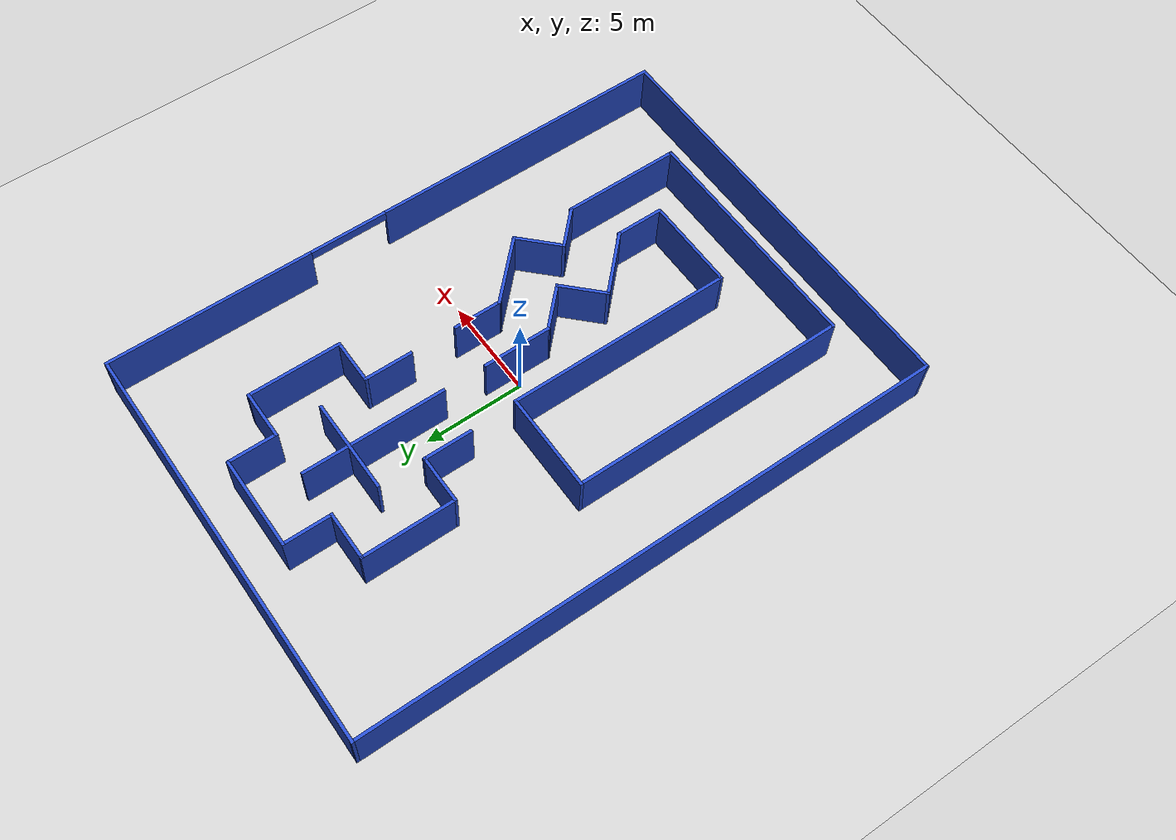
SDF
<?xml version="1.0"?>
<sdf version="1.4">
 <world name="default">
  <include>
   <uri>model://ground_plane</uri>
  </include>

  <include>
   <uri>model://sun</uri>
  </include>
  <model name='navigationWorld'>
    <pose frame=''>-0.160802 0.309901 0 0 -0 0</pose>
    <link name='Wall_0'>
      <collision name='Wall_0_Collision'>
        <geometry>
          <box>
            <size>2.5 0.15 2.5</size>
          </box>
        </geometry>
        <pose frame=''>0 0 1.25 0 -0 0</pose>
      </collision>
      <visual name='Wall_0_Visual'>
        <pose frame=''>0 0 1.25 0 -0 0</pose>
        <geometry>
          <box>
            <size>2.5 0.15 2.5</size>
          </box>
        </geometry>
        <material>
          <script>
            <uri>file://media/materials/scripts/gazebo.material</uri>
            <name>Gazebo/Blue</name>
          </script>
          <ambient>1 1 1 1</ambient>
        </material>
        <meta>
          <layer>0</layer>
        </meta>
      </visual>
      <pose frame=''>-1.61016 4.66775 0 0 -0 1.5708</pose>
    </link>
    <link name='Wall_1'>
      <collision name='Wall_1_Collision'>
        <geometry>
          <box>
            <size>2.5 0.15 2.5</size>
          </box>
        </geometry>
        <pose frame=''>0 0 1.25 0 -0 0</pose>
      </collision>
      <visual name='Wall_1_Visual'>
        <pose frame=''>0 0 1.25 0 -0 0</pose>
        <geometry>
          <box>
            <size>2.5 0.15 2.5</size>
          </box>
        </geometry>
        <material>
          <script>
            <uri>file://media/materials/scripts/gazebo.material</uri>
            <name>Gazebo/Blue</name>
          </script>
          <ambient>1 1 1 1</ambient>
        </material>
        <meta>
          <layer>0</layer>
        </meta>
      </visual>
      <pose frame=''>-2.78516 5.84275 0 0 -0 3.14159</pose>
    </link>
    <link name='Wall_10'>
      <collision name='Wall_10_Collision'>
        <geometry>
          <box>
            <size>2.5 0.15 2.5</size>
          </box>
        </geometry>
        <pose frame=''>0 0 1.25 0 -0 0</pose>
      </collision>
      <visual name='Wall_10_Visual'>
        <pose frame=''>0 0 1.25 0 -0 0</pose>
        <geometry>
          <box>
            <size>2.5 0.15 2.5</size>
          </box>
        </geometry>
        <material>
          <script>
            <uri>file://media/materials/scripts/gazebo.material</uri>
            <name>Gazebo/Blue</name>
          </script>
          <ambient>1 1 1 1</ambient>
        </material>
        <meta>
          <layer>0</layer>
        </meta>
      </visual>
      <pose frame=''>3.14807 4.66775 0 0 -0 -1.5708</pose>
    </link>
    <link name='Wall_12'>
      <collision name='Wall_12_Collision'>
        <geometry>
          <box>
            <size>7.25 0.15 2.5</size>
          </box>
        </geometry>
        <pose frame=''>0 0 1.25 0 -0 0</pose>
      </collision>
      <visual name='Wall_12_Visual'>
        <pose frame=''>0 0 1.25 0 -0 0</pose>
        <geometry>
          <box>
            <size>7.25 0.15 2.5</size>
          </box>
        </geometry>
        <material>
          <script>
            <uri>file://media/materials/scripts/gazebo.material</uri>
            <name>Gazebo/Blue</name>
          </script>
          <ambient>1 1 1 1</ambient>
        </material>
        <meta>
          <layer>0</layer>
        </meta>
      </visual>
      <pose frame=''>0.745925 6.89905 0 0 -0 -1.5708</pose>
    </link>
    <link name='Wall_14'>
      <collision name='Wall_14_Collision'>
        <geometry>
          <box>
            <size>4.75 0.15 2.5</size>
          </box>
        </geometry>
        <pose frame=''>0 0 1.25 0 -0 0</pose>
      </collision>
      <visual name='Wall_14_Visual'>
        <pose frame=''>0 0 1.25 0 -0 0</pose>
        <geometry>
          <box>
            <size>4.75 0.15 2.5</size>
          </box>
        </geometry>
        <material>
          <script>
            <uri>file://media/materials/scripts/gazebo.material</uri>
            <name>Gazebo/Blue</name>
          </script>
          <ambient>1 1 1 1</ambient>
        </material>
        <meta>
          <layer>0</layer>
        </meta>
      </visual>
      <pose frame=''>0.747203 8.15299 0 0 -0 0</pose>
    </link>
    <link name='Wall_16'>
      <collision name='Wall_16_Collision'>
        <geometry>
          <box>
            <size>3.5 0.15 2.5</size>
          </box>
        </geometry>
        <pose frame=''>0 0 1.25 0 -0 0</pose>
      </collision>
      <visual name='Wall_16_Visual'>
        <pose frame=''>0 0 1.25 0 -0 0</pose>
        <geometry>
          <box>
            <size>3.5 0.15 2.5</size>
          </box>
        </geometry>
        <material>
          <script>
            <uri>file://media/materials/scripts/gazebo.material</uri>
            <name>Gazebo/Blue</name>
          </script>
          <ambient>1 1 1 1</ambient>
        </material>
        <meta>
          <layer>0</layer>
        </meta>
      </visual>
      <pose frame=''>0.740968 -0.561625 0 0 -0 -1.5708</pose>
    </link>
    <link name='Wall_17'>
      <collision name='Wall_17_Collision'>
        <geometry>
          <box>
            <size>2.5 0.15 2.5</size>
          </box>
        </geometry>
        <pose frame=''>0 0 1.25 0 -0 0</pose>
      </collision>
      <visual name='Wall_17_Visual'>
        <pose frame=''>0 0 1.25 0 -0 0</pose>
        <geometry>
          <box>
            <size>2.5 0.15 2.5</size>
          </box>
        </geometry>
        <material>
          <script>
            <uri>file://media/materials/scripts/gazebo.material</uri>
            <name>Gazebo/Blue</name>
          </script>
          <ambient>1 1 1 1</ambient>
        </material>
        <meta>
          <layer>0</layer>
        </meta>
      </visual>
      <pose frame=''>1.57182 -3.06748 0 0 -0 -0.785398</pose>
    </link>
    <link name='Wall_18'>
      <collision name='Wall_18_Collision'>
        <geometry>
          <box>
            <size>2.5 0.15 2.5</size>
          </box>
        </geometry>
        <pose frame=''>0 0 1.25 0 -0 0</pose>
      </collision>
      <visual name='Wall_18_Visual'>
        <pose frame=''>0 0 1.25 0 -0 0</pose>
        <geometry>
          <box>
            <size>2.5 0.15 2.5</size>
          </box>
        </geometry>
        <material>
          <script>
            <uri>file://media/materials/scripts/gazebo.material</uri>
            <name>Gazebo/Blue</name>
          </script>
          <ambient>1 1 1 1</ambient>
        </material>
        <meta>
          <layer>0</layer>
        </meta>
      </visual>
      <pose frame=''>1.57182 -4.72918 0 0 -0 -2.35619</pose>
    </link>
    <link name='Wall_19'>
      <collision name='Wall_19_Collision'>
        <geometry>
          <box>
            <size>3.5 0.15 2.5</size>
          </box>
        </geometry>
        <pose frame=''>0 0 1.25 0 -0 0</pose>
      </collision>
      <visual name='Wall_19_Visual'>
        <pose frame=''>0 0 1.25 0 -0 0</pose>
        <geometry>
          <box>
            <size>3.5 0.15 2.5</size>
          </box>
        </geometry>
        <material>
          <script>
            <uri>file://media/materials/scripts/gazebo.material</uri>
            <name>Gazebo/Blue</name>
          </script>
          <ambient>1 1 1 1</ambient>
        </material>
        <meta>
          <layer>0</layer>
        </meta>
      </visual>
      <pose frame=''>1.92537 -6.74443 0 0 -0 -0.785398</pose>
    </link>
    <link name='Wall_2'>
      <collision name='Wall_2_Collision'>
        <geometry>
          <box>
            <size>4.75 0.15 2.5</size>
          </box>
        </geometry>
        <pose frame=''>0 0 1.25 0 -0 0</pose>
      </collision>
      <visual name='Wall_2_Visual'>
        <pose frame=''>0 0 1.25 0 -0 0</pose>
        <geometry>
          <box>
            <size>4.75 0.15 2.5</size>
          </box>
        </geometry>
        <material>
          <script>
            <uri>file://media/materials/scripts/gazebo.material</uri>
            <name>Gazebo/Blue</name>
          </script>
          <ambient>1 1 1 1</ambient>
        </material>
        <meta>
          <layer>0</layer>
        </meta>
      </visual>
      <pose frame=''>-3.96016 8.14275 0 0 -0 1.5708</pose>
    </link>
    <link name='Wall_20'>
      <collision name='Wall_20_Collision'>
        <geometry>
          <box>
            <size>2.5 0.15 2.5</size>
          </box>
        </geometry>
        <pose frame=''>0 0 1.25 0 -0 0</pose>
      </collision>
      <visual name='Wall_20_Visual'>
        <pose frame=''>0 0 1.25 0 -0 0</pose>
        <geometry>
          <box>
            <size>2.5 0.15 2.5</size>
          </box>
        </geometry>
        <material>
          <script>
            <uri>file://media/materials/scripts/gazebo.material</uri>
            <name>Gazebo/Blue</name>
          </script>
          <ambient>1 1 1 1</ambient>
        </material>
        <meta>
          <layer>0</layer>
        </meta>
      </visual>
      <pose frame=''>3.10978 -9.10384 0 0 -0 -1.5708</pose>
    </link>
    <link name='Wall_21'>
      <collision name='Wall_21_Collision'>
        <geometry>
          <box>
            <size>4.75 0.15 2.5</size>
          </box>
        </geometry>
        <pose frame=''>0 0 1.25 0 -0 0</pose>
      </collision>
      <visual name='Wall_21_Visual'>
        <pose frame=''>0 0 1.25 0 -0 0</pose>
        <geometry>
          <box>
            <size>4.75 0.15 2.5</size>
          </box>
        </geometry>
        <material>
          <script>
            <uri>file://media/materials/scripts/gazebo.material</uri>
            <name>Gazebo/Blue</name>
          </script>
          <ambient>1 1 1 1</ambient>
        </material>
        <meta>
          <layer>0</layer>
        </meta>
      </visual>
      <pose frame=''>0.809775 -10.2788 0 0 -0 3.14159</pose>
    </link>
    <link name='Wall_22'>
      <collision name='Wall_22_Collision'>
        <geometry>
          <box>
            <size>11.5 0.15 2.5</size>
          </box>
        </geometry>
        <pose frame=''>0 0 1.25 0 -0 0</pose>
      </collision>
      <visual name='Wall_22_Visual'>
        <pose frame=''>0 0 1.25 0 -0 0</pose>
        <geometry>
          <box>
            <size>11.5 0.15 2.5</size>
          </box>
        </geometry>
        <material>
          <script>
            <uri>file://media/materials/scripts/gazebo.material</uri>
            <name>Gazebo/Blue</name>
          </script>
          <ambient>1 1 1 1</ambient>
        </material>
        <meta>
          <layer>0</layer>
        </meta>
      </visual>
      <pose frame=''>-1.49022 -4.60384 0 0 -0 1.5708</pose>
    </link>
    <link name='Wall_23'>
      <collision name='Wall_23_Collision'>
        <geometry>
          <box>
            <size>5 0.15 2.5</size>
          </box>
        </geometry>
        <pose frame=''>0 0 1.25 0 -0 0</pose>
      </collision>
      <visual name='Wall_23_Visual'>
        <pose frame=''>0 0 1.25 0 -0 0</pose>
        <geometry>
          <box>
            <size>5 0.15 2.5</size>
          </box>
        </geometry>
        <material>
          <script>
            <uri>file://media/materials/scripts/gazebo.material</uri>
            <name>Gazebo/Blue</name>
          </script>
          <ambient>1 1 1 1</ambient>
        </material>
        <meta>
          <layer>0</layer>
        </meta>
      </visual>
      <pose frame=''>-3.91522 1.07116 0 0 -0 3.14159</pose>
    </link>
    <link name='Wall_24'>
      <collision name='Wall_24_Collision'>
        <geometry>
          <box>
            <size>14 0.15 2.5</size>
          </box>
        </geometry>
        <pose frame=''>0 0 1.25 0 -0 0</pose>
      </collision>
      <visual name='Wall_24_Visual'>
        <pose frame=''>0 0 1.25 0 -0 0</pose>
        <geometry>
          <box>
            <size>14 0.15 2.5</size>
          </box>
        </geometry>
        <material>
          <script>
            <uri>file://media/materials/scripts/gazebo.material</uri>
            <name>Gazebo/Blue</name>
          </script>
          <ambient>1 1 1 1</ambient>
        </material>
        <meta>
          <layer>0</layer>
        </meta>
      </visual>
      <pose frame=''>-6.34023 -5.85384 0 0 -0 -1.5708</pose>
    </link>
    <link name='Wall_25'>
      <collision name='Wall_25_Collision'>
        <geometry>
          <box>
            <size>12 0.15 2.5</size>
          </box>
        </geometry>
        <pose frame=''>0 0 1.25 0 -0 0</pose>
      </collision>
      <visual name='Wall_25_Visual'>
        <pose frame=''>0 0 1.25 0 -0 0</pose>
        <geometry>
          <box>
            <size>12 0.15 2.5</size>
          </box>
        </geometry>
        <material>
          <script>
            <uri>file://media/materials/scripts/gazebo.material</uri>
            <name>Gazebo/Blue</name>
          </script>
          <ambient>1 1 1 1</ambient>
        </material>
        <meta>
          <layer>0</layer>
        </meta>
      </visual>
      <pose frame=''>-0.415225 -12.7788 0 0 -0 0</pose>
    </link>
    <link name='Wall_26'>
      <collision name='Wall_26_Collision'>
        <geometry>
          <box>
            <size>6 0.15 2.5</size>
          </box>
        </geometry>
        <pose frame=''>0 0 1.25 0 -0 0</pose>
      </collision>
      <visual name='Wall_26_Visual'>
        <pose frame=''>0 0 1.25 0 -0 0</pose>
        <geometry>
          <box>
            <size>6 0.15 2.5</size>
          </box>
        </geometry>
        <material>
          <script>
            <uri>file://media/materials/scripts/gazebo.material</uri>
            <name>Gazebo/Blue</name>
          </script>
          <ambient>1 1 1 1</ambient>
        </material>
        <meta>
          <layer>0</layer>
        </meta>
      </visual>
      <pose frame=''>5.50978 -9.85384 0 0 -0 1.5708</pose>
    </link>
    <link name='Wall_27'>
      <collision name='Wall_27_Collision'>
        <geometry>
          <box>
            <size>2.25 0.15 2.5</size>
          </box>
        </geometry>
        <pose frame=''>0 0 1.25 0 -0 0</pose>
      </collision>
      <visual name='Wall_27_Visual'>
        <pose frame=''>0 0 1.25 0 -0 0</pose>
        <geometry>
          <box>
            <size>2.25 0.15 2.5</size>
          </box>
        </geometry>
        <material>
          <script>
            <uri>file://media/materials/scripts/gazebo.material</uri>
            <name>Gazebo/Blue</name>
          </script>
          <ambient>1 1 1 1</ambient>
        </material>
        <meta>
          <layer>0</layer>
        </meta>
      </visual>
      <pose frame=''>4.76731 -6.18637 0 0 -0 2.35619</pose>
    </link>
    <link name='Wall_28'>
      <collision name='Wall_28_Collision'>
        <geometry>
          <box>
            <size>2.5 0.15 2.5</size>
          </box>
        </geometry>
        <pose frame=''>0 0 1.25 0 -0 0</pose>
      </collision>
      <visual name='Wall_28_Visual'>
        <pose frame=''>0 0 1.25 0 -0 0</pose>
        <geometry>
          <box>
            <size>2.5 0.15 2.5</size>
          </box>
        </geometry>
        <material>
          <script>
            <uri>file://media/materials/scripts/gazebo.material</uri>
            <name>Gazebo/Blue</name>
          </script>
          <ambient>1 1 1 1</ambient>
        </material>
        <meta>
          <layer>0</layer>
        </meta>
      </visual>
      <pose frame=''>4.8557 -4.61306 0 0 -0 0.785398</pose>
    </link>
    <link name='Wall_29'>
      <collision name='Wall_29_Collision'>
        <geometry>
          <box>
            <size>3.75 0.15 2.5</size>
          </box>
        </geometry>
        <pose frame=''>0 0 1.25 0 -0 0</pose>
      </collision>
      <visual name='Wall_29_Visual'>
        <pose frame=''>0 0 1.25 0 -0 0</pose>
        <geometry>
          <box>
            <size>3.75 0.15 2.5</size>
          </box>
        </geometry>
        <material>
          <script>
            <uri>file://media/materials/scripts/gazebo.material</uri>
            <name>Gazebo/Blue</name>
          </script>
          <ambient>1 1 1 1</ambient>
        </material>
        <meta>
          <layer>0</layer>
        </meta>
      </visual>
      <pose frame=''>4.41376 -2.50942 0 0 -0 2.35619</pose>
    </link>
    <link name='Wall_3'>
      <collision name='Wall_3_Collision'>
        <geometry>
          <box>
            <size>2.5 0.15 2.5</size>
          </box>
        </geometry>
        <pose frame=''>0 0 1.25 0 -0 0</pose>
      </collision>
      <visual name='Wall_3_Visual'>
        <pose frame=''>0 0 1.25 0 -0 0</pose>
        <geometry>
          <box>
            <size>2.5 0.15 2.5</size>
          </box>
        </geometry>
        <material>
          <script>
            <uri>file://media/materials/scripts/gazebo.material</uri>
            <name>Gazebo/Blue</name>
          </script>
          <ambient>1 1 1 1</ambient>
        </material>
        <meta>
          <layer>0</layer>
        </meta>
      </visual>
      <pose frame=''>-2.78516 10.4427 0 0 -0 0</pose>
    </link>
    <link name='Wall_30'>
      <collision name='Wall_30_Collision'>
        <geometry>
          <box>
            <size>2.5 0.15 2.5</size>
          </box>
        </geometry>
        <pose frame=''>0 0 1.25 0 -0 0</pose>
      </collision>
      <visual name='Wall_30_Visual'>
        <pose frame=''>0 0 1.25 0 -0 0</pose>
        <geometry>
          <box>
            <size>2.5 0.15 2.5</size>
          </box>
        </geometry>
        <material>
          <script>
            <uri>file://media/materials/scripts/gazebo.material</uri>
            <name>Gazebo/Blue</name>
          </script>
          <ambient>1 1 1 1</ambient>
        </material>
        <meta>
          <layer>0</layer>
        </meta>
      </visual>
      <pose frame=''>3.14097 -0.061625 0 0 -0 1.5708</pose>
    </link>
    <link name='Wall_32'>
      <collision name='Wall_32_Collision'>
        <geometry>
          <box>
            <size>20.75 0.15 2.5</size>
          </box>
        </geometry>
        <pose frame=''>0 0 1.25 0 -0 0</pose>
      </collision>
      <visual name='Wall_32_Visual'>
        <pose frame=''>0 0 1.25 0 -0 0</pose>
        <geometry>
          <box>
            <size>20.75 0.15 2.5</size>
          </box>
        </geometry>
        <material>
          <script>
            <uri>file://media/materials/scripts/gazebo.material</uri>
            <name>Gazebo/Blue</name>
          </script>
          <ambient>1 1 1 1</ambient>
        </material>
        <meta>
          <layer>0</layer>
        </meta>
      </visual>
      <pose frame=''>0 14.8 0 0 -0 1e-05</pose>
    </link>
    <link name='Wall_33'>
      <pose frame=''>10.2998 9.9e-05 0 0 -0 -1.5708</pose>
      <visual name='Wall_33_Visual_0'>
        <pose frame=''>-9.60457 0 1.25 0 -0 0</pose>
        <geometry>
          <box>
            <size>10.5409 0.15 2.5</size>
          </box>
        </geometry>
        <material>
          <script>
            <uri>file://media/materials/scripts/gazebo.material</uri>
            <name>Gazebo/Blue</name>
          </script>
          <ambient>1 1 1 1</ambient>
        </material>
        <meta>
          <layer>0</layer>
        </meta>
      </visual>
      <collision name='Wall_33_Collision_0'>
        <geometry>
          <box>
            <size>10.5409 0.15 2.5</size>
          </box>
        </geometry>
        <pose frame=''>-9.60457 0 1.25 0 -0 0</pose>
      </collision>
      <visual name='Wall_33_Visual_1'>
        <pose frame=''>7.27043 0 1.25 0 -0 0</pose>
        <geometry>
          <box>
            <size>15.2091 0.15 2.5</size>
          </box>
        </geometry>
        <material>
          <script>
            <uri>file://media/materials/scripts/gazebo.material</uri>
            <name>Gazebo/Blue</name>
          </script>
          <ambient>1 1 1 1</ambient>
        </material>
        <meta>
          <layer>0</layer>
        </meta>
      </visual>
      <collision name='Wall_33_Collision_1'>
        <geometry>
          <box>
            <size>15.2091 0.15 2.5</size>
          </box>
        </geometry>
        <pose frame=''>7.27043 0 1.25 0 -0 0</pose>
      </collision>
      <visual name='Wall_33_Visual_2'>
        <pose frame=''>-2.33414 0 2.25 0 -0 0</pose>
        <geometry>
          <box>
            <size>4 0.15 0.5</size>
          </box>
        </geometry>
        <material>
          <script>
            <uri>file://media/materials/scripts/gazebo.material</uri>
            <name>Gazebo/Blue</name>
          </script>
          <ambient>1 1 1 1</ambient>
        </material>
        <meta>
          <layer>0</layer>
        </meta>
      </visual>
      <collision name='Wall_33_Collision_2'>
        <geometry>
          <box>
            <size>4 0.15 0.5</size>
          </box>
        </geometry>
        <pose frame=''>-2.33414 0 2.25 0 -0 0</pose>
      </collision>
    </link>
    <link name='Wall_34'>
      <collision name='Wall_34_Collision'>
        <geometry>
          <box>
            <size>20.75 0.15 2.5</size>
          </box>
        </geometry>
        <pose frame=''>0 0 1.25 0 -0 0</pose>
      </collision>
      <visual name='Wall_34_Visual'>
        <pose frame=''>0 0 1.25 0 -0 0</pose>
        <geometry>
          <box>
            <size>20.75 0.15 2.5</size>
          </box>
        </geometry>
        <material>
          <script>
            <uri>file://media/materials/scripts/gazebo.material</uri>
            <name>Gazebo/Blue</name>
          </script>
          <ambient>1 1 1 1</ambient>
        </material>
        <meta>
          <layer>0</layer>
        </meta>
      </visual>
      <pose frame=''>0 -14.8 0 0 -0 -3.14158</pose>
    </link>
    <link name='Wall_35'>
      <collision name='Wall_35_Collision'>
        <geometry>
          <box>
            <size>29.75 0.15 2.5</size>
          </box>
        </geometry>
        <pose frame=''>0 0 1.25 0 -0 0</pose>
      </collision>
      <visual name='Wall_35_Visual'>
        <pose frame=''>0 0 1.25 0 -0 0</pose>
        <geometry>
          <box>
            <size>29.75 0.15 2.5</size>
          </box>
        </geometry>
        <material>
          <script>
            <uri>file://media/materials/scripts/gazebo.material</uri>
            <name>Gazebo/Blue</name>
          </script>
          <ambient>1 1 1 1</ambient>
        </material>
        <meta>
          <layer>0</layer>
        </meta>
      </visual>
      <pose frame=''>-10.2998 -9.9e-05 0 0 -0 1.5708</pose>
    </link>
    <link name='Wall_4'>
      <collision name='Wall_4_Collision'>
        <geometry>
          <box>
            <size>2.5 0.15 2.5</size>
          </box>
        </geometry>
        <pose frame=''>0 0 1.25 0 -0 0</pose>
      </collision>
      <visual name='Wall_4_Visual'>
        <pose frame=''>0 0 1.25 0 -0 0</pose>
        <geometry>
          <box>
            <size>2.5 0.15 2.5</size>
          </box>
        </geometry>
        <material>
          <script>
            <uri>file://media/materials/scripts/gazebo.material</uri>
            <name>Gazebo/Blue</name>
          </script>
          <ambient>1 1 1 1</ambient>
        </material>
        <meta>
          <layer>0</layer>
        </meta>
      </visual>
      <pose frame=''>-1.61016 11.6177 0 0 -0 1.5708</pose>
    </link>
    <link name='Wall_5'>
      <collision name='Wall_5_Collision'>
        <geometry>
          <box>
            <size>4.75 0.15 2.5</size>
          </box>
        </geometry>
        <pose frame=''>0 0 1.25 0 -0 0</pose>
      </collision>
      <visual name='Wall_5_Visual'>
        <pose frame=''>0 0 1.25 0 -0 0</pose>
        <geometry>
          <box>
            <size>4.75 0.15 2.5</size>
          </box>
        </geometry>
        <material>
          <script>
            <uri>file://media/materials/scripts/gazebo.material</uri>
            <name>Gazebo/Blue</name>
          </script>
          <ambient>1 1 1 1</ambient>
        </material>
        <meta>
          <layer>0</layer>
        </meta>
      </visual>
      <pose frame=''>0.68984 12.7927 0 0 -0 0</pose>
    </link>
    <link name='Wall_6'>
      <collision name='Wall_6_Collision'>
        <geometry>
          <box>
            <size>2.5 0.15 2.5</size>
          </box>
        </geometry>
        <pose frame=''>0 0 1.25 0 -0 0</pose>
      </collision>
      <visual name='Wall_6_Visual'>
        <pose frame=''>0 0 1.25 0 -0 0</pose>
        <geometry>
          <box>
            <size>2.5 0.15 2.5</size>
          </box>
        </geometry>
        <material>
          <script>
            <uri>file://media/materials/scripts/gazebo.material</uri>
            <name>Gazebo/Blue</name>
          </script>
          <ambient>1 1 1 1</ambient>
        </material>
        <meta>
          <layer>0</layer>
        </meta>
      </visual>
      <pose frame=''>2.98984 11.6177 0 0 -0 -1.5708</pose>
    </link>
    <link name='Wall_7'>
      <collision name='Wall_7_Collision'>
        <geometry>
          <box>
            <size>2.5 0.15 2.5</size>
          </box>
        </geometry>
        <pose frame=''>0 0 1.25 0 -0 0</pose>
      </collision>
      <visual name='Wall_7_Visual'>
        <pose frame=''>0 0 1.25 0 -0 0</pose>
        <geometry>
          <box>
            <size>2.5 0.15 2.5</size>
          </box>
        </geometry>
        <material>
          <script>
            <uri>file://media/materials/scripts/gazebo.material</uri>
            <name>Gazebo/Blue</name>
          </script>
          <ambient>1 1 1 1</ambient>
        </material>
        <meta>
          <layer>0</layer>
        </meta>
      </visual>
      <pose frame=''>4.16484 10.4427 0 0 -0 0</pose>
    </link>
    <link name='Wall_8'>
      <collision name='Wall_8_Collision'>
        <geometry>
          <box>
            <size>4.75 0.15 2.5</size>
          </box>
        </geometry>
        <pose frame=''>0 0 1.25 0 -0 0</pose>
      </collision>
      <visual name='Wall_8_Visual'>
        <pose frame=''>0 0 1.25 0 -0 0</pose>
        <geometry>
          <box>
            <size>4.75 0.15 2.5</size>
          </box>
        </geometry>
        <material>
          <script>
            <uri>file://media/materials/scripts/gazebo.material</uri>
            <name>Gazebo/Blue</name>
          </script>
          <ambient>1 1 1 1</ambient>
        </material>
        <meta>
          <layer>0</layer>
        </meta>
      </visual>
      <pose frame=''>5.33984 8.14275 0 0 -0 -1.5708</pose>
    </link>
    <link name='Wall_9'>
      <collision name='Wall_9_Collision'>
        <geometry>
          <box>
            <size>2.35707 0.15 2.5</size>
          </box>
        </geometry>
        <pose frame=''>0 0 1.25 0 -0 0</pose>
      </collision>
      <visual name='Wall_9_Visual'>
        <pose frame=''>0 0 1.25 0 -0 0</pose>
        <geometry>
          <box>
            <size>2.35707 0.15 2.5</size>
          </box>
        </geometry>
        <material>
          <script>
            <uri>file://media/materials/scripts/gazebo.material</uri>
            <name>Gazebo/Blue</name>
          </script>
          <ambient>1 1 1 1</ambient>
        </material>
        <meta>
          <layer>0</layer>
        </meta>
      </visual>
      <pose frame=''>4.23631 5.84275 0 0 -0 3.14159</pose>
    </link>
    <static>1</static>
  </model>
 </world>
</sdf>
